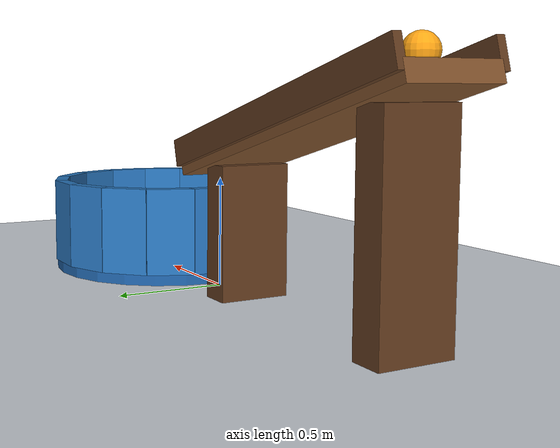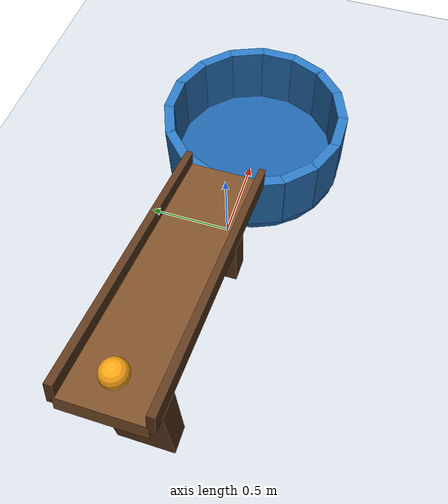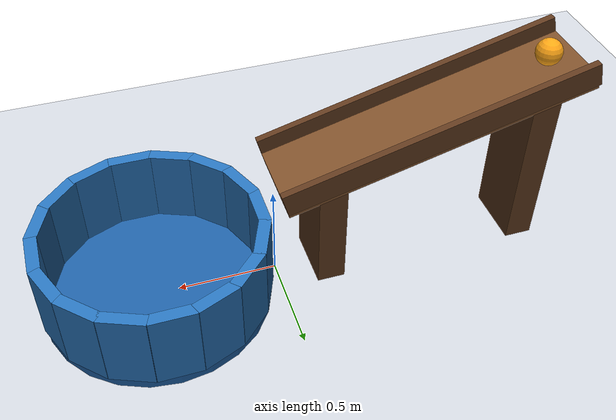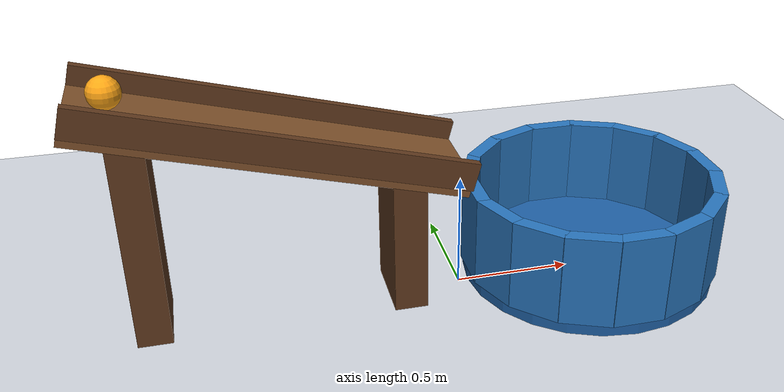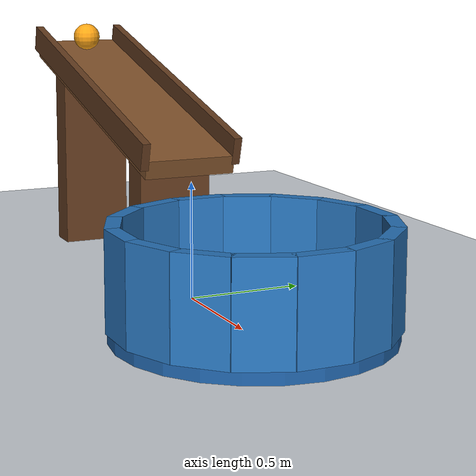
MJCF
<mujoco model="ball_ramp_cup">
  <compiler angle="degree"/>
  <option timestep="0.002" gravity="0 0 -9.81" integrator="implicitfast" cone="elliptic" iterations="80"/>

  <visual>
    <headlight ambient="0.35 0.35 0.35" diffuse="0.7 0.7 0.7"/>
    <global azimuth="135" elevation="-25"/>
  </visual>

  <worldbody>
    <light name="overhead" pos="-1 -2 4" dir="0.2 0.3 -1"/>
    <camera name="overview" pos="2.8 -4 2.7" xyaxes="0.8 0.6 0 -0.3 0.4 0.866"/>

    <geom name="floor" type="plane" size="4 4 0.1" pos="0 0 0" rgba="0.82 0.84 0.87 1" friction="1 0.005 0.01" condim="6"/>

    <body name="ramp">
      <geom name="ramp_surface" type="box" pos="-0.760307 0 0.761351" euler="0 14.931417 0" size="0.776209 0.20 0.04" rgba="0.50 0.32 0.17 1" friction="0.8 0.002 0.001" condim="6" solref="0.008 1" solimp="0.95 0.99 0.001"/>
      <geom name="ramp_rail_left" type="box" pos="-0.744847 0.207 0.819325" euler="0 14.931417 0" size="0.776209 0.018 0.06" rgba="0.38 0.23 0.12 1" friction="0.8 0.002 0.001" condim="6"/>
      <geom name="ramp_rail_right" type="box" pos="-0.744847 -0.207 0.819325" euler="0 14.931417 0" size="0.776209 0.018 0.06" rgba="0.38 0.23 0.12 1" friction="0.8 0.002 0.001" condim="6"/>
      <geom name="ramp_support_high" type="box" pos="-1.30 0 0.432" size="0.07 0.16 0.432" rgba="0.38 0.23 0.12 1"/>
      <geom name="ramp_support_low" type="box" pos="-0.25 0 0.292" size="0.07 0.16 0.292" rgba="0.38 0.23 0.12 1"/>
    </body>

    <body name="cup" pos="0.60 0 0">
      <geom name="cup_base" type="cylinder" pos="0 0 0.03" size="0.56 0.03" rgba="0.12 0.38 0.65 1" friction="1.2 0.01 0.025" condim="6" solref="0.008 1" solimp="0.95 0.99 0.001"/>
      <geom name="cup_wall_00" type="box" pos="0.53 0 0.25" euler="0 0 0" size="0.03 0.11 0.20" rgba="0.16 0.46 0.74 1" friction="1.2 0.01 0.025" condim="6" solref="0.008 1"/>
      <geom name="cup_wall_01" type="box" pos="0.489656 0.202817 0.25" euler="0 0 22.5" size="0.03 0.11 0.20" rgba="0.16 0.46 0.74 1" friction="1.2 0.01 0.025" condim="6" solref="0.008 1"/>
      <geom name="cup_wall_02" type="box" pos="0.374767 0.374767 0.25" euler="0 0 45" size="0.03 0.11 0.20" rgba="0.16 0.46 0.74 1" friction="1.2 0.01 0.025" condim="6" solref="0.008 1"/>
      <geom name="cup_wall_03" type="box" pos="0.202817 0.489656 0.25" euler="0 0 67.5" size="0.03 0.11 0.20" rgba="0.16 0.46 0.74 1" friction="1.2 0.01 0.025" condim="6" solref="0.008 1"/>
      <geom name="cup_wall_04" type="box" pos="0 0.53 0.25" euler="0 0 90" size="0.03 0.11 0.20" rgba="0.16 0.46 0.74 1" friction="1.2 0.01 0.025" condim="6" solref="0.008 1"/>
      <geom name="cup_wall_05" type="box" pos="-0.202817 0.489656 0.25" euler="0 0 112.5" size="0.03 0.11 0.20" rgba="0.16 0.46 0.74 1" friction="1.2 0.01 0.025" condim="6" solref="0.008 1"/>
      <geom name="cup_wall_06" type="box" pos="-0.374767 0.374767 0.25" euler="0 0 135" size="0.03 0.11 0.20" rgba="0.16 0.46 0.74 1" friction="1.2 0.01 0.025" condim="6" solref="0.008 1"/>
      <geom name="cup_wall_07" type="box" pos="-0.489656 0.202817 0.25" euler="0 0 157.5" size="0.03 0.11 0.20" rgba="0.16 0.46 0.74 1" friction="1.2 0.01 0.025" condim="6" solref="0.008 1"/>
      <geom name="cup_wall_08" type="box" pos="-0.53 0 0.25" euler="0 0 180" size="0.03 0.11 0.20" rgba="0.16 0.46 0.74 1" friction="1.2 0.01 0.025" condim="6" solref="0.008 1"/>
      <geom name="cup_wall_09" type="box" pos="-0.489656 -0.202817 0.25" euler="0 0 202.5" size="0.03 0.11 0.20" rgba="0.16 0.46 0.74 1" friction="1.2 0.01 0.025" condim="6" solref="0.008 1"/>
      <geom name="cup_wall_10" type="box" pos="-0.374767 -0.374767 0.25" euler="0 0 225" size="0.03 0.11 0.20" rgba="0.16 0.46 0.74 1" friction="1.2 0.01 0.025" condim="6" solref="0.008 1"/>
      <geom name="cup_wall_11" type="box" pos="-0.202817 -0.489656 0.25" euler="0 0 247.5" size="0.03 0.11 0.20" rgba="0.16 0.46 0.74 1" friction="1.2 0.01 0.025" condim="6" solref="0.008 1"/>
      <geom name="cup_wall_12" type="box" pos="0 -0.53 0.25" euler="0 0 270" size="0.03 0.11 0.20" rgba="0.16 0.46 0.74 1" friction="1.2 0.01 0.025" condim="6" solref="0.008 1"/>
      <geom name="cup_wall_13" type="box" pos="0.202817 -0.489656 0.25" euler="0 0 292.5" size="0.03 0.11 0.20" rgba="0.16 0.46 0.74 1" friction="1.2 0.01 0.025" condim="6" solref="0.008 1"/>
      <geom name="cup_wall_14" type="box" pos="0.374767 -0.374767 0.25" euler="0 0 315" size="0.03 0.11 0.20" rgba="0.16 0.46 0.74 1" friction="1.2 0.01 0.025" condim="6" solref="0.008 1"/>
      <geom name="cup_wall_15" type="box" pos="0.489656 -0.202817 0.25" euler="0 0 337.5" size="0.03 0.11 0.20" rgba="0.16 0.46 0.74 1" friction="1.2 0.01 0.025" condim="6" solref="0.008 1"/>
    </body>

    <body name="ball" pos="-1.35 0 1.0283">
      <freejoint name="ball_free"/>
      <geom name="ball" type="sphere" size="0.065" mass="0.12" rgba="1 0.65 0.08 1" friction="0.8 0.002 0.001" condim="6" solref="0.008 1" solimp="0.95 0.99 0.001"/>
    </body>
  </worldbody>

  <keyframe>
    <key name="start" qpos="-1.35 0 1.0283 1 0 0 0" qvel="0 0 0 0 0 0"/>
  </keyframe>
</mujoco>
